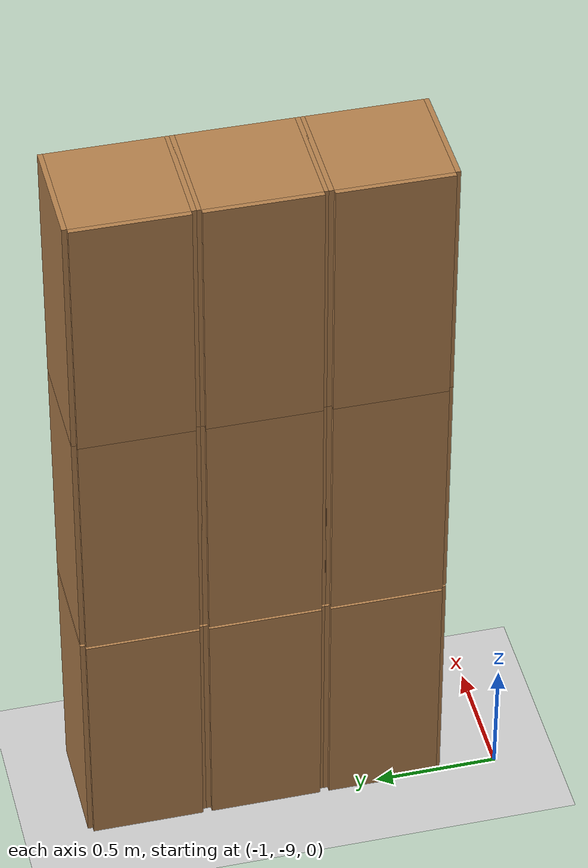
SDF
<sdf version="1.6">
 <world name="default">
  <model name="ground_plane">
   <static>1</static>
   <link name="link">
    <collision name="collision">
     <geometry><plane><normal>0 0 1</normal><size>100 100</size></plane></geometry>
     <surface>
      <contact><collide_bitmask>65535</collide_bitmask></contact>
      <friction><ode><mu>100</mu><mu2>50</mu2></ode></friction>
     </surface>
    </collision>
    <visual name="visual">
     <cast_shadows>0</cast_shadows>
     <geometry><plane><normal>0 0 1</normal><size>100 100</size></plane></geometry>
     <material>
      <script><uri>file://media/materials/scripts/gazebo.material</uri><name>Gazebo/Grey</name></script>
     </material>
    </visual>
   </link>
  </model>
  <model name="Locker18_clone_4_clone_2_clone_1_clone_clone_clone_2_clone_clone_2_clone_clone_2">
   <model name="Locker18">
    <model name="Locker3">
     <model name="cabinet">
      <static>1</static>
      <link name="cabinet_bottom_plate">
       <inertial>
        <pose>0 0 -1 0 -0 0</pose>
        <inertia><ixx>2.05</ixx><ixy>0</ixy><ixz>0</ixz><iyy>2.05</iyy><iyz>0</iyz><izz>2.05</izz></inertia>
        <mass>25</mass>
       </inertial>
       <collision name="cabinet_bottom_plate_geom">
        <pose>0 0 0.01 0 -0 0</pose>
        <geometry><box><size>0.45 0.45 0.02</size></box></geometry>
       </collision>
       <visual name="cabinet_bottom_plate_geom_visual">
        <pose>0 0 0.01 0 -0 0</pose>
        <geometry><box><size>0.45 0.45 0.02</size></box></geometry>
        <material>
         <script><uri>file://media/materials/scripts/gazebo.material</uri><name>Gazebo/Wood</name></script>
        </material>
       </visual>
       <collision name="cabinet_bottom_plate_geom_cabinet_back_plate">
        <pose>0.235 0 0.51 0 -0 0</pose>
        <geometry><box><size>0.02 0.45 1.02</size></box></geometry>
       </collision>
       <visual name="cabinet_bottom_plate_geom_cabinet_back_plate_visual">
        <pose>0.235 0 0.51 0 -0 0</pose>
        <geometry><box><size>0.02 0.45 1.02</size></box></geometry>
        <material>
         <script><uri>file://media/materials/scripts/gazebo.material</uri><name>Gazebo/Wood</name></script>
        </material>
       </visual>
       <collision name="cabinet_bottom_plate_geom_cabinet_left_plate">
        <pose>0 0.235 0.51 0 -0 0</pose>
        <geometry><box><size>0.45 0.02 1.02</size></box></geometry>
       </collision>
       <visual name="cabinet_bottom_plate_geom_cabinet_left_plate_visual">
        <pose>0 0.235 0.51 0 -0 0</pose>
        <geometry><box><size>0.45 0.02 1.02</size></box></geometry>
        <material>
         <script><uri>file://media/materials/scripts/gazebo.material</uri><name>Gazebo/Wood</name></script>
        </material>
       </visual>
       <collision name="cabinet_bottom_plate_geom_cabinet_middle_plate">
        <pose>0 0 0.51 0 -0 0</pose>
        <geometry><box><size>0.45 0.45 0.02</size></box></geometry>
       </collision>
       <visual name="cabinet_bottom_plate_geom_cabinet_middle_plate_visual">
        <pose>0 0 0.51 0 -0 0</pose>
        <geometry><box><size>0.45 0.45 0.02</size></box></geometry>
        <material>
         <script><uri>file://media/materials/scripts/gazebo.material</uri><name>Gazebo/Wood</name></script>
        </material>
       </visual>
       <collision name="cabinet_bottom_plate_geom_cabinet_right_plate">
        <pose>0 -0.235 0.51 0 -0 0</pose>
        <geometry><box><size>0.45 0.02 1.02</size></box></geometry>
       </collision>
       <visual name="cabinet_bottom_plate_geom_cabinet_right_plate_visual">
        <pose>0 -0.235 0.51 0 -0 0</pose>
        <geometry><box><size>0.45 0.02 1.02</size></box></geometry>
        <material>
         <script><uri>file://media/materials/scripts/gazebo.material</uri><name>Gazebo/Wood</name></script>
        </material>
       </visual>
       <collision name="cabinet_bottom_plate_geom_cabinet_top_plate">
        <pose>0 0 1.01 0 -0 0</pose>
        <geometry><box><size>0.45 0.45 0.02</size></box></geometry>
       </collision>
       <visual name="cabinet_bottom_plate_geom_cabinet_top_plate_visual">
        <pose>0 0 1.01 0 -0 0</pose>
        <geometry><box><size>0.45 0.45 0.02</size></box></geometry>
        <material>
         <script><uri>file://media/materials/scripts/gazebo.material</uri><name>Gazebo/Wood</name></script>
        </material>
       </visual>
      </link>
      <pose>-0.676968 1.45758 0 0 -0 0</pose>
     </model>
     <model name="cabinet_clone">
      <static>1</static>
      <link name="cabinet_bottom_plate">
       <inertial>
        <pose>0 0 -1 0 -0 0</pose>
        <inertia><ixx>2.05</ixx><ixy>0</ixy><ixz>0</ixz><iyy>2.05</iyy><iyz>0</iyz><izz>2.05</izz></inertia>
        <mass>25</mass>
       </inertial>
       <collision name="cabinet_bottom_plate_geom">
        <pose>0 0 0.01 0 -0 0</pose>
        <geometry><box><size>0.45 0.45 0.02</size></box></geometry>
       </collision>
       <visual name="cabinet_bottom_plate_geom_visual">
        <pose>0 0 0.01 0 -0 0</pose>
        <geometry><box><size>0.45 0.45 0.02</size></box></geometry>
        <material>
         <script><uri>file://media/materials/scripts/gazebo.material</uri><name>Gazebo/Wood</name></script>
        </material>
       </visual>
       <collision name="cabinet_bottom_plate_geom_cabinet_back_plate">
        <pose>0.235 0 0.51 0 -0 0</pose>
        <geometry><box><size>0.02 0.45 1.02</size></box></geometry>
       </collision>
       <visual name="cabinet_bottom_plate_geom_cabinet_back_plate_visual">
        <pose>0.235 0 0.51 0 -0 0</pose>
        <geometry><box><size>0.02 0.45 1.02</size></box></geometry>
        <material>
         <script><uri>file://media/materials/scripts/gazebo.material</uri><name>Gazebo/Wood</name></script>
        </material>
       </visual>
       <collision name="cabinet_bottom_plate_geom_cabinet_left_plate">
        <pose>0 0.235 0.51 0 -0 0</pose>
        <geometry><box><size>0.45 0.02 1.02</size></box></geometry>
       </collision>
       <visual name="cabinet_bottom_plate_geom_cabinet_left_plate_visual">
        <pose>0 0.235 0.51 0 -0 0</pose>
        <geometry><box><size>0.45 0.02 1.02</size></box></geometry>
        <material>
         <script><uri>file://media/materials/scripts/gazebo.material</uri><name>Gazebo/Wood</name></script>
        </material>
       </visual>
       <collision name="cabinet_bottom_plate_geom_cabinet_middle_plate">
        <pose>0 0 0.51 0 -0 0</pose>
        <geometry><box><size>0.45 0.45 0.02</size></box></geometry>
       </collision>
       <visual name="cabinet_bottom_plate_geom_cabinet_middle_plate_visual">
        <pose>0 0 0.51 0 -0 0</pose>
        <geometry><box><size>0.45 0.45 0.02</size></box></geometry>
        <material>
         <script><uri>file://media/materials/scripts/gazebo.material</uri><name>Gazebo/Wood</name></script>
        </material>
       </visual>
       <collision name="cabinet_bottom_plate_geom_cabinet_right_plate">
        <pose>0 -0.235 0.51 0 -0 0</pose>
        <geometry><box><size>0.45 0.02 1.02</size></box></geometry>
       </collision>
       <visual name="cabinet_bottom_plate_geom_cabinet_right_plate_visual">
        <pose>0 -0.235 0.51 0 -0 0</pose>
        <geometry><box><size>0.45 0.02 1.02</size></box></geometry>
        <material>
         <script><uri>file://media/materials/scripts/gazebo.material</uri><name>Gazebo/Wood</name></script>
        </material>
       </visual>
       <collision name="cabinet_bottom_plate_geom_cabinet_top_plate">
        <pose>0 0 1.01 0 -0 0</pose>
        <geometry><box><size>0.45 0.45 0.02</size></box></geometry>
       </collision>
       <visual name="cabinet_bottom_plate_geom_cabinet_top_plate_visual">
        <pose>0 0 1.01 0 -0 0</pose>
        <geometry><box><size>0.45 0.45 0.02</size></box></geometry>
        <material>
         <script><uri>file://media/materials/scripts/gazebo.material</uri><name>Gazebo/Wood</name></script>
        </material>
       </visual>
      </link>
      <pose>-0.676968 0.970971 0 0 -0 0</pose>
     </model>
     <model name="cabinet_clone_0">
      <static>1</static>
      <link name="cabinet_bottom_plate">
       <inertial>
        <pose>0 0 -1 0 -0 0</pose>
        <inertia><ixx>2.05</ixx><ixy>0</ixy><ixz>0</ixz><iyy>2.05</iyy><iyz>0</iyz><izz>2.05</izz></inertia>
        <mass>25</mass>
       </inertial>
       <collision name="cabinet_bottom_plate_geom">
        <pose>0 0 0.01 0 -0 0</pose>
        <geometry><box><size>0.45 0.45 0.02</size></box></geometry>
       </collision>
       <visual name="cabinet_bottom_plate_geom_visual">
        <pose>0 0 0.01 0 -0 0</pose>
        <geometry><box><size>0.45 0.45 0.02</size></box></geometry>
        <material>
         <script><uri>file://media/materials/scripts/gazebo.material</uri><name>Gazebo/Wood</name></script>
        </material>
       </visual>
       <collision name="cabinet_bottom_plate_geom_cabinet_back_plate">
        <pose>0.235 0 0.51 0 -0 0</pose>
        <geometry><box><size>0.02 0.45 1.02</size></box></geometry>
       </collision>
       <visual name="cabinet_bottom_plate_geom_cabinet_back_plate_visual">
        <pose>0.235 0 0.51 0 -0 0</pose>
        <geometry><box><size>0.02 0.45 1.02</size></box></geometry>
        <material>
         <script><uri>file://media/materials/scripts/gazebo.material</uri><name>Gazebo/Wood</name></script>
        </material>
       </visual>
       <collision name="cabinet_bottom_plate_geom_cabinet_left_plate">
        <pose>0 0.235 0.51 0 -0 0</pose>
        <geometry><box><size>0.45 0.02 1.02</size></box></geometry>
       </collision>
       <visual name="cabinet_bottom_plate_geom_cabinet_left_plate_visual">
        <pose>0 0.235 0.51 0 -0 0</pose>
        <geometry><box><size>0.45 0.02 1.02</size></box></geometry>
        <material>
         <script><uri>file://media/materials/scripts/gazebo.material</uri><name>Gazebo/Wood</name></script>
        </material>
       </visual>
       <collision name="cabinet_bottom_plate_geom_cabinet_middle_plate">
        <pose>0 0 0.51 0 -0 0</pose>
        <geometry><box><size>0.45 0.45 0.02</size></box></geometry>
       </collision>
       <visual name="cabinet_bottom_plate_geom_cabinet_middle_plate_visual">
        <pose>0 0 0.51 0 -0 0</pose>
        <geometry><box><size>0.45 0.45 0.02</size></box></geometry>
        <material>
         <script><uri>file://media/materials/scripts/gazebo.material</uri><name>Gazebo/Wood</name></script>
        </material>
       </visual>
       <collision name="cabinet_bottom_plate_geom_cabinet_right_plate">
        <pose>0 -0.235 0.51 0 -0 0</pose>
        <geometry><box><size>0.45 0.02 1.02</size></box></geometry>
       </collision>
       <visual name="cabinet_bottom_plate_geom_cabinet_right_plate_visual">
        <pose>0 -0.235 0.51 0 -0 0</pose>
        <geometry><box><size>0.45 0.02 1.02</size></box></geometry>
        <material>
         <script><uri>file://media/materials/scripts/gazebo.material</uri><name>Gazebo/Wood</name></script>
        </material>
       </visual>
       <collision name="cabinet_bottom_plate_geom_cabinet_top_plate">
        <pose>0 0 1.01 0 -0 0</pose>
        <geometry><box><size>0.45 0.45 0.02</size></box></geometry>
       </collision>
       <visual name="cabinet_bottom_plate_geom_cabinet_top_plate_visual">
        <pose>0 0 1.01 0 -0 0</pose>
        <geometry><box><size>0.45 0.45 0.02</size></box></geometry>
        <material>
         <script><uri>file://media/materials/scripts/gazebo.material</uri><name>Gazebo/Wood</name></script>
        </material>
       </visual>
      </link>
      <pose>-0.676968 0.48391 0 0 -0 0</pose>
     </model>
     <static>0</static>
     <pose>0 3e-06 -1.02763 0 -0 0</pose>
    </model>
    <model name="Locker3_clone">
     <model name="cabinet">
      <static>1</static>
      <link name="cabinet_bottom_plate">
       <inertial>
        <pose>0 0 -1 0 -0 0</pose>
        <inertia><ixx>2.05</ixx><ixy>0</ixy><ixz>0</ixz><iyy>2.05</iyy><iyz>0</iyz><izz>2.05</izz></inertia>
        <mass>25</mass>
       </inertial>
       <collision name="cabinet_bottom_plate_geom">
        <pose>0 0 0.01 0 -0 0</pose>
        <geometry><box><size>0.45 0.45 0.02</size></box></geometry>
       </collision>
       <visual name="cabinet_bottom_plate_geom_visual">
        <pose>0 0 0.01 0 -0 0</pose>
        <geometry><box><size>0.45 0.45 0.02</size></box></geometry>
        <material>
         <script><uri>file://media/materials/scripts/gazebo.material</uri><name>Gazebo/Wood</name></script>
        </material>
       </visual>
       <collision name="cabinet_bottom_plate_geom_cabinet_back_plate">
        <pose>0.235 0 0.51 0 -0 0</pose>
        <geometry><box><size>0.02 0.45 1.02</size></box></geometry>
       </collision>
       <visual name="cabinet_bottom_plate_geom_cabinet_back_plate_visual">
        <pose>0.235 0 0.51 0 -0 0</pose>
        <geometry><box><size>0.02 0.45 1.02</size></box></geometry>
        <material>
         <script><uri>file://media/materials/scripts/gazebo.material</uri><name>Gazebo/Wood</name></script>
        </material>
       </visual>
       <collision name="cabinet_bottom_plate_geom_cabinet_left_plate">
        <pose>0 0.235 0.51 0 -0 0</pose>
        <geometry><box><size>0.45 0.02 1.02</size></box></geometry>
       </collision>
       <visual name="cabinet_bottom_plate_geom_cabinet_left_plate_visual">
        <pose>0 0.235 0.51 0 -0 0</pose>
        <geometry><box><size>0.45 0.02 1.02</size></box></geometry>
        <material>
         <script><uri>file://media/materials/scripts/gazebo.material</uri><name>Gazebo/Wood</name></script>
        </material>
       </visual>
       <collision name="cabinet_bottom_plate_geom_cabinet_middle_plate">
        <pose>0 0 0.51 0 -0 0</pose>
        <geometry><box><size>0.45 0.45 0.02</size></box></geometry>
       </collision>
       <visual name="cabinet_bottom_plate_geom_cabinet_middle_plate_visual">
        <pose>0 0 0.51 0 -0 0</pose>
        <geometry><box><size>0.45 0.45 0.02</size></box></geometry>
        <material>
         <script><uri>file://media/materials/scripts/gazebo.material</uri><name>Gazebo/Wood</name></script>
        </material>
       </visual>
       <collision name="cabinet_bottom_plate_geom_cabinet_right_plate">
        <pose>0 -0.235 0.51 0 -0 0</pose>
        <geometry><box><size>0.45 0.02 1.02</size></box></geometry>
       </collision>
       <visual name="cabinet_bottom_plate_geom_cabinet_right_plate_visual">
        <pose>0 -0.235 0.51 0 -0 0</pose>
        <geometry><box><size>0.45 0.02 1.02</size></box></geometry>
        <material>
         <script><uri>file://media/materials/scripts/gazebo.material</uri><name>Gazebo/Wood</name></script>
        </material>
       </visual>
       <collision name="cabinet_bottom_plate_geom_cabinet_top_plate">
        <pose>0 0 1.01 0 -0 0</pose>
        <geometry><box><size>0.45 0.45 0.02</size></box></geometry>
       </collision>
       <visual name="cabinet_bottom_plate_geom_cabinet_top_plate_visual">
        <pose>0 0 1.01 0 -0 0</pose>
        <geometry><box><size>0.45 0.45 0.02</size></box></geometry>
        <material>
         <script><uri>file://media/materials/scripts/gazebo.material</uri><name>Gazebo/Wood</name></script>
        </material>
       </visual>
      </link>
      <pose>-0.676968 1.45758 0 0 -0 0</pose>
     </model>
     <model name="cabinet_clone">
      <static>1</static>
      <link name="cabinet_bottom_plate">
       <inertial>
        <pose>0 0 -1 0 -0 0</pose>
        <inertia><ixx>2.05</ixx><ixy>0</ixy><ixz>0</ixz><iyy>2.05</iyy><iyz>0</iyz><izz>2.05</izz></inertia>
        <mass>25</mass>
       </inertial>
       <collision name="cabinet_bottom_plate_geom">
        <pose>0 0 0.01 0 -0 0</pose>
        <geometry><box><size>0.45 0.45 0.02</size></box></geometry>
       </collision>
       <visual name="cabinet_bottom_plate_geom_visual">
        <pose>0 0 0.01 0 -0 0</pose>
        <geometry><box><size>0.45 0.45 0.02</size></box></geometry>
        <material>
         <script><uri>file://media/materials/scripts/gazebo.material</uri><name>Gazebo/Wood</name></script>
        </material>
       </visual>
       <collision name="cabinet_bottom_plate_geom_cabinet_back_plate">
        <pose>0.235 0 0.51 0 -0 0</pose>
        <geometry><box><size>0.02 0.45 1.02</size></box></geometry>
       </collision>
       <visual name="cabinet_bottom_plate_geom_cabinet_back_plate_visual">
        <pose>0.235 0 0.51 0 -0 0</pose>
        <geometry><box><size>0.02 0.45 1.02</size></box></geometry>
        <material>
         <script><uri>file://media/materials/scripts/gazebo.material</uri><name>Gazebo/Wood</name></script>
        </material>
       </visual>
       <collision name="cabinet_bottom_plate_geom_cabinet_left_plate">
        <pose>0 0.235 0.51 0 -0 0</pose>
        <geometry><box><size>0.45 0.02 1.02</size></box></geometry>
       </collision>
       <visual name="cabinet_bottom_plate_geom_cabinet_left_plate_visual">
        <pose>0 0.235 0.51 0 -0 0</pose>
        <geometry><box><size>0.45 0.02 1.02</size></box></geometry>
        <material>
         <script><uri>file://media/materials/scripts/gazebo.material</uri><name>Gazebo/Wood</name></script>
        </material>
       </visual>
       <collision name="cabinet_bottom_plate_geom_cabinet_middle_plate">
        <pose>0 0 0.51 0 -0 0</pose>
        <geometry><box><size>0.45 0.45 0.02</size></box></geometry>
       </collision>
       <visual name="cabinet_bottom_plate_geom_cabinet_middle_plate_visual">
        <pose>0 0 0.51 0 -0 0</pose>
        <geometry><box><size>0.45 0.45 0.02</size></box></geometry>
        <material>
         <script><uri>file://media/materials/scripts/gazebo.material</uri><name>Gazebo/Wood</name></script>
        </material>
       </visual>
       <collision name="cabinet_bottom_plate_geom_cabinet_right_plate">
        <pose>0 -0.235 0.51 0 -0 0</pose>
        <geometry><box><size>0.45 0.02 1.02</size></box></geometry>
       </collision>
       <visual name="cabinet_bottom_plate_geom_cabinet_right_plate_visual">
        <pose>0 -0.235 0.51 0 -0 0</pose>
        <geometry><box><size>0.45 0.02 1.02</size></box></geometry>
        <material>
         <script><uri>file://media/materials/scripts/gazebo.material</uri><name>Gazebo/Wood</name></script>
        </material>
       </visual>
       <collision name="cabinet_bottom_plate_geom_cabinet_top_plate">
        <pose>0 0 1.01 0 -0 0</pose>
        <geometry><box><size>0.45 0.45 0.02</size></box></geometry>
       </collision>
       <visual name="cabinet_bottom_plate_geom_cabinet_top_plate_visual">
        <pose>0 0 1.01 0 -0 0</pose>
        <geometry><box><size>0.45 0.45 0.02</size></box></geometry>
        <material>
         <script><uri>file://media/materials/scripts/gazebo.material</uri><name>Gazebo/Wood</name></script>
        </material>
       </visual>
      </link>
      <pose>-0.676968 0.970971 0 0 -0 0</pose>
     </model>
     <model name="cabinet_clone_0">
      <static>1</static>
      <link name="cabinet_bottom_plate">
       <inertial>
        <pose>0 0 -1 0 -0 0</pose>
        <inertia><ixx>2.05</ixx><ixy>0</ixy><ixz>0</ixz><iyy>2.05</iyy><iyz>0</iyz><izz>2.05</izz></inertia>
        <mass>25</mass>
       </inertial>
       <collision name="cabinet_bottom_plate_geom">
        <pose>0 0 0.01 0 -0 0</pose>
        <geometry><box><size>0.45 0.45 0.02</size></box></geometry>
       </collision>
       <visual name="cabinet_bottom_plate_geom_visual">
        <pose>0 0 0.01 0 -0 0</pose>
        <geometry><box><size>0.45 0.45 0.02</size></box></geometry>
        <material>
         <script><uri>file://media/materials/scripts/gazebo.material</uri><name>Gazebo/Wood</name></script>
        </material>
       </visual>
       <collision name="cabinet_bottom_plate_geom_cabinet_back_plate">
        <pose>0.235 0 0.51 0 -0 0</pose>
        <geometry><box><size>0.02 0.45 1.02</size></box></geometry>
       </collision>
       <visual name="cabinet_bottom_plate_geom_cabinet_back_plate_visual">
        <pose>0.235 0 0.51 0 -0 0</pose>
        <geometry><box><size>0.02 0.45 1.02</size></box></geometry>
        <material>
         <script><uri>file://media/materials/scripts/gazebo.material</uri><name>Gazebo/Wood</name></script>
        </material>
       </visual>
       <collision name="cabinet_bottom_plate_geom_cabinet_left_plate">
        <pose>0 0.235 0.51 0 -0 0</pose>
        <geometry><box><size>0.45 0.02 1.02</size></box></geometry>
       </collision>
       <visual name="cabinet_bottom_plate_geom_cabinet_left_plate_visual">
        <pose>0 0.235 0.51 0 -0 0</pose>
        <geometry><box><size>0.45 0.02 1.02</size></box></geometry>
        <material>
         <script><uri>file://media/materials/scripts/gazebo.material</uri><name>Gazebo/Wood</name></script>
        </material>
       </visual>
       <collision name="cabinet_bottom_plate_geom_cabinet_middle_plate">
        <pose>0 0 0.51 0 -0 0</pose>
        <geometry><box><size>0.45 0.45 0.02</size></box></geometry>
       </collision>
       <visual name="cabinet_bottom_plate_geom_cabinet_middle_plate_visual">
        <pose>0 0 0.51 0 -0 0</pose>
        <geometry><box><size>0.45 0.45 0.02</size></box></geometry>
        <material>
         <script><uri>file://media/materials/scripts/gazebo.material</uri><name>Gazebo/Wood</name></script>
        </material>
       </visual>
       <collision name="cabinet_bottom_plate_geom_cabinet_right_plate">
        <pose>0 -0.235 0.51 0 -0 0</pose>
        <geometry><box><size>0.45 0.02 1.02</size></box></geometry>
       </collision>
       <visual name="cabinet_bottom_plate_geom_cabinet_right_plate_visual">
        <pose>0 -0.235 0.51 0 -0 0</pose>
        <geometry><box><size>0.45 0.02 1.02</size></box></geometry>
        <material>
         <script><uri>file://media/materials/scripts/gazebo.material</uri><name>Gazebo/Wood</name></script>
        </material>
       </visual>
       <collision name="cabinet_bottom_plate_geom_cabinet_top_plate">
        <pose>0 0 1.01 0 -0 0</pose>
        <geometry><box><size>0.45 0.45 0.02</size></box></geometry>
       </collision>
       <visual name="cabinet_bottom_plate_geom_cabinet_top_plate_visual">
        <pose>0 0 1.01 0 -0 0</pose>
        <geometry><box><size>0.45 0.45 0.02</size></box></geometry>
        <material>
         <script><uri>file://media/materials/scripts/gazebo.material</uri><name>Gazebo/Wood</name></script>
        </material>
       </visual>
      </link>
      <pose>-0.676968 0.48391 0 0 -0 0</pose>
     </model>
     <static>0</static>
     <pose>0 3e-06 0.003717 0 -0 0</pose>
    </model>
    <model name="Locker3_clone_clone">
     <model name="cabinet">
      <static>1</static>
      <link name="cabinet_bottom_plate">
       <inertial>
        <pose>0 0 -1 0 -0 0</pose>
        <inertia><ixx>2.05</ixx><ixy>0</ixy><ixz>0</ixz><iyy>2.05</iyy><iyz>0</iyz><izz>2.05</izz></inertia>
        <mass>25</mass>
       </inertial>
       <collision name="cabinet_bottom_plate_geom">
        <pose>0 0 0.01 0 -0 0</pose>
        <geometry><box><size>0.45 0.45 0.02</size></box></geometry>
       </collision>
       <visual name="cabinet_bottom_plate_geom_visual">
        <pose>0 0 0.01 0 -0 0</pose>
        <geometry><box><size>0.45 0.45 0.02</size></box></geometry>
        <material>
         <script><uri>file://media/materials/scripts/gazebo.material</uri><name>Gazebo/Wood</name></script>
        </material>
       </visual>
       <collision name="cabinet_bottom_plate_geom_cabinet_back_plate">
        <pose>0.235 0 0.51 0 -0 0</pose>
        <geometry><box><size>0.02 0.45 1.02</size></box></geometry>
       </collision>
       <visual name="cabinet_bottom_plate_geom_cabinet_back_plate_visual">
        <pose>0.235 0 0.51 0 -0 0</pose>
        <geometry><box><size>0.02 0.45 1.02</size></box></geometry>
        <material>
         <script><uri>file://media/materials/scripts/gazebo.material</uri><name>Gazebo/Wood</name></script>
        </material>
       </visual>
       <collision name="cabinet_bottom_plate_geom_cabinet_left_plate">
        <pose>0 0.235 0.51 0 -0 0</pose>
        <geometry><box><size>0.45 0.02 1.02</size></box></geometry>
       </collision>
       <visual name="cabinet_bottom_plate_geom_cabinet_left_plate_visual">
        <pose>0 0.235 0.51 0 -0 0</pose>
        <geometry><box><size>0.45 0.02 1.02</size></box></geometry>
        <material>
         <script><uri>file://media/materials/scripts/gazebo.material</uri><name>Gazebo/Wood</name></script>
        </material>
       </visual>
       <collision name="cabinet_bottom_plate_geom_cabinet_middle_plate">
        <pose>0 0 0.51 0 -0 0</pose>
        <geometry><box><size>0.45 0.45 0.02</size></box></geometry>
       </collision>
       <visual name="cabinet_bottom_plate_geom_cabinet_middle_plate_visual">
        <pose>0 0 0.51 0 -0 0</pose>
        <geometry><box><size>0.45 0.45 0.02</size></box></geometry>
        <material>
         <script><uri>file://media/materials/scripts/gazebo.material</uri><name>Gazebo/Wood</name></script>
        </material>
       </visual>
       <collision name="cabinet_bottom_plate_geom_cabinet_right_plate">
        <pose>0 -0.235 0.51 0 -0 0</pose>
        <geometry><box><size>0.45 0.02 1.02</size></box></geometry>
       </collision>
       <visual name="cabinet_bottom_plate_geom_cabinet_right_plate_visual">
        <pose>0 -0.235 0.51 0 -0 0</pose>
        <geometry><box><size>0.45 0.02 1.02</size></box></geometry>
        <material>
         <script><uri>file://media/materials/scripts/gazebo.material</uri><name>Gazebo/Wood</name></script>
        </material>
       </visual>
       <collision name="cabinet_bottom_plate_geom_cabinet_top_plate">
        <pose>0 0 1.01 0 -0 0</pose>
        <geometry><box><size>0.45 0.45 0.02</size></box></geometry>
       </collision>
       <visual name="cabinet_bottom_plate_geom_cabinet_top_plate_visual">
        <pose>0 0 1.01 0 -0 0</pose>
        <geometry><box><size>0.45 0.45 0.02</size></box></geometry>
        <material>
         <script><uri>file://media/materials/scripts/gazebo.material</uri><name>Gazebo/Wood</name></script>
        </material>
       </visual>
      </link>
      <pose>-0.676968 1.45758 0 0 -0 0</pose>
     </model>
     <model name="cabinet_clone">
      <static>1</static>
      <link name="cabinet_bottom_plate">
       <inertial>
        <pose>0 0 -1 0 -0 0</pose>
        <inertia><ixx>2.05</ixx><ixy>0</ixy><ixz>0</ixz><iyy>2.05</iyy><iyz>0</iyz><izz>2.05</izz></inertia>
        <mass>25</mass>
       </inertial>
       <collision name="cabinet_bottom_plate_geom">
        <pose>0 0 0.01 0 -0 0</pose>
        <geometry><box><size>0.45 0.45 0.02</size></box></geometry>
       </collision>
       <visual name="cabinet_bottom_plate_geom_visual">
        <pose>0 0 0.01 0 -0 0</pose>
        <geometry><box><size>0.45 0.45 0.02</size></box></geometry>
        <material>
         <script><uri>file://media/materials/scripts/gazebo.material</uri><name>Gazebo/Wood</name></script>
        </material>
       </visual>
       <collision name="cabinet_bottom_plate_geom_cabinet_back_plate">
        <pose>0.235 0 0.51 0 -0 0</pose>
        <geometry><box><size>0.02 0.45 1.02</size></box></geometry>
       </collision>
       <visual name="cabinet_bottom_plate_geom_cabinet_back_plate_visual">
        <pose>0.235 0 0.51 0 -0 0</pose>
        <geometry><box><size>0.02 0.45 1.02</size></box></geometry>
        <material>
         <script><uri>file://media/materials/scripts/gazebo.material</uri><name>Gazebo/Wood</name></script>
        </material>
       </visual>
       <collision name="cabinet_bottom_plate_geom_cabinet_left_plate">
        <pose>0 0.235 0.51 0 -0 0</pose>
        <geometry><box><size>0.45 0.02 1.02</size></box></geometry>
       </collision>
       <visual name="cabinet_bottom_plate_geom_cabinet_left_plate_visual">
        <pose>0 0.235 0.51 0 -0 0</pose>
        <geometry><box><size>0.45 0.02 1.02</size></box></geometry>
        <material>
         <script><uri>file://media/materials/scripts/gazebo.material</uri><name>Gazebo/Wood</name></script>
        </material>
       </visual>
       <collision name="cabinet_bottom_plate_geom_cabinet_middle_plate">
        <pose>0 0 0.51 0 -0 0</pose>
        <geometry><box><size>0.45 0.45 0.02</size></box></geometry>
       </collision>
       <visual name="cabinet_bottom_plate_geom_cabinet_middle_plate_visual">
        <pose>0 0 0.51 0 -0 0</pose>
        <geometry><box><size>0.45 0.45 0.02</size></box></geometry>
        <material>
         <script><uri>file://media/materials/scripts/gazebo.material</uri><name>Gazebo/Wood</name></script>
        </material>
       </visual>
       <collision name="cabinet_bottom_plate_geom_cabinet_right_plate">
        <pose>0 -0.235 0.51 0 -0 0</pose>
        <geometry><box><size>0.45 0.02 1.02</size></box></geometry>
       </collision>
       <visual name="cabinet_bottom_plate_geom_cabinet_right_plate_visual">
        <pose>0 -0.235 0.51 0 -0 0</pose>
        <geometry><box><size>0.45 0.02 1.02</size></box></geometry>
        <material>
         <script><uri>file://media/materials/scripts/gazebo.material</uri><name>Gazebo/Wood</name></script>
        </material>
       </visual>
       <collision name="cabinet_bottom_plate_geom_cabinet_top_plate">
        <pose>0 0 1.01 0 -0 0</pose>
        <geometry><box><size>0.45 0.45 0.02</size></box></geometry>
       </collision>
       <visual name="cabinet_bottom_plate_geom_cabinet_top_plate_visual">
        <pose>0 0 1.01 0 -0 0</pose>
        <geometry><box><size>0.45 0.45 0.02</size></box></geometry>
        <material>
         <script><uri>file://media/materials/scripts/gazebo.material</uri><name>Gazebo/Wood</name></script>
        </material>
       </visual>
      </link>
      <pose>-0.676968 0.970971 0 0 -0 0</pose>
     </model>
     <model name="cabinet_clone_0">
      <static>1</static>
      <link name="cabinet_bottom_plate">
       <inertial>
        <pose>0 0 -1 0 -0 0</pose>
        <inertia><ixx>2.05</ixx><ixy>0</ixy><ixz>0</ixz><iyy>2.05</iyy><iyz>0</iyz><izz>2.05</izz></inertia>
        <mass>25</mass>
       </inertial>
       <collision name="cabinet_bottom_plate_geom">
        <pose>0 0 0.01 0 -0 0</pose>
        <geometry><box><size>0.45 0.45 0.02</size></box></geometry>
       </collision>
       <visual name="cabinet_bottom_plate_geom_visual">
        <pose>0 0 0.01 0 -0 0</pose>
        <geometry><box><size>0.45 0.45 0.02</size></box></geometry>
        <material>
         <script><uri>file://media/materials/scripts/gazebo.material</uri><name>Gazebo/Wood</name></script>
        </material>
       </visual>
       <collision name="cabinet_bottom_plate_geom_cabinet_back_plate">
        <pose>0.235 0 0.51 0 -0 0</pose>
        <geometry><box><size>0.02 0.45 1.02</size></box></geometry>
       </collision>
       <visual name="cabinet_bottom_plate_geom_cabinet_back_plate_visual">
        <pose>0.235 0 0.51 0 -0 0</pose>
        <geometry><box><size>0.02 0.45 1.02</size></box></geometry>
        <material>
         <script><uri>file://media/materials/scripts/gazebo.material</uri><name>Gazebo/Wood</name></script>
        </material>
       </visual>
       <collision name="cabinet_bottom_plate_geom_cabinet_left_plate">
        <pose>0 0.235 0.51 0 -0 0</pose>
        <geometry><box><size>0.45 0.02 1.02</size></box></geometry>
       </collision>
       <visual name="cabinet_bottom_plate_geom_cabinet_left_plate_visual">
        <pose>0 0.235 0.51 0 -0 0</pose>
        <geometry><box><size>0.45 0.02 1.02</size></box></geometry>
        <material>
         <script><uri>file://media/materials/scripts/gazebo.material</uri><name>Gazebo/Wood</name></script>
        </material>
       </visual>
       <collision name="cabinet_bottom_plate_geom_cabinet_middle_plate">
        <pose>0 0 0.51 0 -0 0</pose>
        <geometry><box><size>0.45 0.45 0.02</size></box></geometry>
       </collision>
       <visual name="cabinet_bottom_plate_geom_cabinet_middle_plate_visual">
        <pose>0 0 0.51 0 -0 0</pose>
        <geometry><box><size>0.45 0.45 0.02</size></box></geometry>
        <material>
         <script><uri>file://media/materials/scripts/gazebo.material</uri><name>Gazebo/Wood</name></script>
        </material>
       </visual>
       <collision name="cabinet_bottom_plate_geom_cabinet_right_plate">
        <pose>0 -0.235 0.51 0 -0 0</pose>
        <geometry><box><size>0.45 0.02 1.02</size></box></geometry>
       </collision>
       <visual name="cabinet_bottom_plate_geom_cabinet_right_plate_visual">
        <pose>0 -0.235 0.51 0 -0 0</pose>
        <geometry><box><size>0.45 0.02 1.02</size></box></geometry>
        <material>
         <script><uri>file://media/materials/scripts/gazebo.material</uri><name>Gazebo/Wood</name></script>
        </material>
       </visual>
       <collision name="cabinet_bottom_plate_geom_cabinet_top_plate">
        <pose>0 0 1.01 0 -0 0</pose>
        <geometry><box><size>0.45 0.45 0.02</size></box></geometry>
       </collision>
       <visual name="cabinet_bottom_plate_geom_cabinet_top_plate_visual">
        <pose>0 0 1.01 0 -0 0</pose>
        <geometry><box><size>0.45 0.45 0.02</size></box></geometry>
        <material>
         <script><uri>file://media/materials/scripts/gazebo.material</uri><name>Gazebo/Wood</name></script>
        </material>
       </visual>
      </link>
      <pose>-0.676968 0.48391 0 0 -0 0</pose>
     </model>
     <static>0</static>
     <pose>0 3e-06 1.02391 0 -0 0</pose>
    </model>
    <static>0</static>
    <pose>-0 4e-06 4e-06 0 -0 0</pose>
   </model>
   <static>0</static>
   <pose>-1.4992 -7.04897 1.08672 0 -0 3.14119</pose>
  </model>
 </world>
</sdf>
